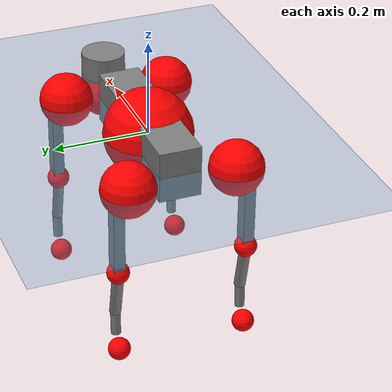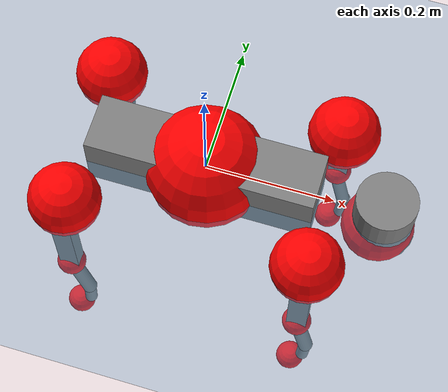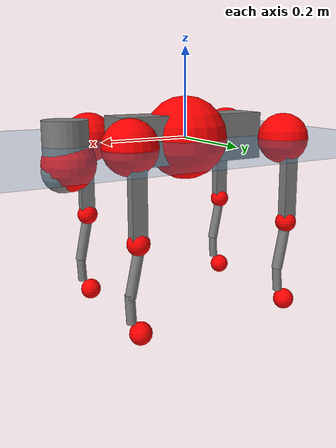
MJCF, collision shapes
<mujoco model="go2">
  <compiler angle="radian" assetdir="assets" balanceinertia="true" inertiafromgeom="false"/>

  <option timestep="0.005" density="1.2" viscosity="2e-05"/>

  <size nkey="1"/>

  <visual>
    <quality shadowsize="8192"/>
    <map shadowclip="0.5"/>
  </visual>

  <default>
    <default class="/">
      <geom contype="0" conaffinity="0" group="1" solref="-1000 -80"/>
      <site size="0.01 0.005 0.005" group="5"/>
      <general forcelimited="true" biastype="affine" gainprm="20" biasprm="0 -20 -0.5"/>
      <default class="go2">
        <joint armature="0.01" damping="0.01" frictionloss="0.2"/>
        <geom condim="1" margin="0.001"/>
        <default class="visual">
          <geom type="mesh" group="2"/>
        </default>
        <default class="collision">
          <geom group="3"/>
          <default class="foot">
            <geom size="0.022 0 0" condim="6" priority="1" friction="0.8 0.02 0.01" solimp="0.015 1 0.022"/>
          </default>
        </default>
        <default class="reward_collision_sphere">
          <geom group="5" rgba="1 0 0 1"/>
        </default>
      </default>
    </default>
  </default>

  <asset>
    <texture type="skybox" colorspace="auto" name="//unnamed_texture_0" builtin="gradient" rgb1="0.95 0.95 0.95" rgb2="0.95 0.95 0.95" width="100" height="600"/>
    <texture type="2d" colorspace="auto" name="texplane" builtin="checker" rgb1="0.345 0.575 0.748" rgb2="0.345 0.575 0.748" markrgb="1 1 1" width="512" height="512"/>
    <material name="MatPlane" class="/" texture="texplane" texuniform="true" texrepeat="2 2" specular="0.9"/>
    <material name="metal" class="/" rgba="0.9 0.95 0.95 1"/>
    <material name="black" class="/" rgba="0 0 0 1"/>
    <material name="white" class="/"/>
    <material name="gray" class="/" rgba="0.671705 0.692426 0.77427 1"/>
    <mesh name="base_0" class="/" file="base_0.obj"/>
    <mesh name="base_1" class="/" file="base_1.obj"/>
    <mesh name="base_2" class="/" file="base_2.obj"/>
    <mesh name="base_3" class="/" file="base_3.obj"/>
    <mesh name="base_4" class="/" file="base_4.obj"/>
    <mesh name="hip_0" class="/" file="hip_0.obj"/>
    <mesh name="hip_1" class="/" file="hip_1.obj"/>
    <mesh name="thigh_0" class="/" file="thigh_0.obj"/>
    <mesh name="thigh_1" class="/" file="thigh_1.obj"/>
    <mesh name="thigh_mirror_0" class="/" file="thigh_mirror_0.obj"/>
    <mesh name="thigh_mirror_1" class="/" file="thigh_mirror_1.obj"/>
    <mesh name="calf_0" class="/" file="calf_0.obj"/>
    <mesh name="calf_1" class="/" file="calf_1.obj"/>
    <mesh name="calf_mirror_0" class="/" file="calf_mirror_0.obj"/>
    <mesh name="calf_mirror_1" class="/" file="calf_mirror_1.obj"/>
    <mesh name="foot" class="/" file="foot.obj"/>
  </asset>

  <worldbody>
    <geom name="floor" class="/" size="100 100 0.125" type="plane" group="0" material="MatPlane"/>
    <light name="toplight_shadow" class="/" pos="0 0 5" dir="0.0990148 0.0990148 -0.990148" type="directional" ambient="0.04 0.04 0.04" diffuse="0.55 0.55 0.55" specular="0.12 0.12 0.12"/>
    <light name="toplight_fill" class="/" pos="0 0 5" dir="0.0990148 0.0990148 -0.990148" type="directional" castshadow="false" ambient="0.04 0.04 0.04" diffuse="0.3 0.3 0.3" specular="0.08 0.08 0.08"/>
    <body name="trunk" childclass="go2" pos="7.13272e-05 0.000316504 -7.88485e-05" quat="1 -1.3892e-05 -1.85187e-05 1.53008e-06">
      <inertial pos="0.0200468 -3.60601e-06 -0.00490932" quat="0.0024944 0.712543 -0.00843695 0.701573" mass="5.73694" diaginertia="0.0932632 0.0823283 0.0128111"/>
      <joint name="//unnamed_joint_0" type="free" armature="0" damping="0" frictionloss="0"/>
      <geom name="//unnamed_geom_1" class="visual" material="black" mesh="base_0"/>
      <geom name="//unnamed_geom_2" class="visual" material="black" mesh="base_1"/>
      <geom name="//unnamed_geom_3" class="visual" material="black" mesh="base_2"/>
      <geom name="//unnamed_geom_4" class="visual" material="white" mesh="base_3"/>
      <geom name="//unnamed_geom_5" class="visual" material="gray" mesh="base_4"/>
      <geom name="trunk_1" class="collision" size="0.176312 0.0438203 0.0534279" type="box"/>
      <geom name="trunk_2" class="collision" size="0.0468666 0.0421799" pos="0.276663 0 0.00878628" type="cylinder"/>
      <geom name="trunk_3" class="collision" size="0.0440546" pos="0.284429 0 -0.0527177"/>
      <geom name="//unnamed_geom_9" class="reward_collision_sphere" size="0.0937332"/>
      <geom name="//unnamed_geom_10" class="reward_collision_sphere" size="0.0562399" pos="0.271809 0 -0.0395383"/>
      <site name="imu" pos="-0.0270064 -0.0047186 0.0387959" size="0.00937332"/>
      <camera name="track" pos="0 -1.92524 0" quat="0.707107 0.707107 0 0" mode="trackcom"/>
      <camera name="ego_camera" pos="0.302873 0 0.0395383" quat="-0.5 -0.5 0.5 0.5"/>
      <body name="FL_hip" pos="0.186334 0.0463939 0.00233566" quat="1 -2.31839e-06 6.96029e-06 5.79081e-08">
        <inertial pos="-0.00556135 0.00207133 -0.00102252" quat="0.497164 0.498897 0.505528 0.498369" mass="0.561119" diaginertia="0.000761525 0.000498002 0.000253005"/>
        <joint name="FL_hip_joint" pos="0 0 0" axis="0.999984 0.000676571 -0.00564676" stiffness="0.00656141" range="-1.019 1.03101" armature="0.0095568" damping="0.00381805" frictionloss="0.18048"/>
        <geom name="//unnamed_geom_11" class="visual" material="metal" mesh="hip_0"/>
        <geom name="//unnamed_geom_12" class="visual" material="gray" mesh="hip_1"/>
        <geom name="//unnamed_geom_13" class="collision" size="0.0431173 0.0187466" pos="0 0.0770098 0" quat="0.707107 0.707107 0 0" type="cylinder"/>
        <geom name="//unnamed_geom_14" class="reward_collision_sphere" size="0.0562399" pos="0 0.0673835 0"/>
        <body name="FL_thigh" pos="-0.00126951 0.0930506 0.00177783" quat="1 0.000269656 -1.31658e-05 -0.000251312">
          <inertial pos="-0.00460387 -0.0221646 -0.0280765" quat="0.830077 0.085338 -0.0203139 0.550706" mass="0.948485" diaginertia="0.00510899 0.00481639 0.000458552"/>
          <joint name="FL_thigh_joint" pos="0 0 0" axis="-0.00304911 0.999991 0.00282037" stiffness="0.00487239" range="-1.58709 3.50877" armature="0.00933734" damping="0.0108118" frictionloss="0.183319"/>
          <geom name="//unnamed_geom_15" class="visual" material="metal" mesh="thigh_0"/>
          <geom name="//unnamed_geom_16" class="visual" material="gray" mesh="thigh_1"/>
          <geom name="//unnamed_geom_17" class="collision" size="0.0998259 0.0114823 0.0159346" pos="0 0 -0.0935739" quat="0.707107 0 0.707107 0" type="box"/>
          <body name="FL_calf" pos="-0.00108599 -0.00158448 -0.18671" quat="1 0.000242756 0.000188199 0.000353745">
            <inertial pos="0.00542772 -0.000548765 -0.125072" quat="0.710741 0.00132084 -0.00405486 0.703441" mass="0.198069" diaginertia="0.00129064 0.00122313 2.74648e-05"/>
            <joint name="FL_calf_joint" pos="0 0 0" axis="0.00734797 0.999972 -0.00159806" stiffness="0.00201232" range="-2.74765 -0.83382" armature="0.00981917" damping="0.000451462" frictionloss="0.186674"/>
            <geom name="//unnamed_geom_18" class="visual" material="gray" mesh="calf_0"/>
            <geom name="//unnamed_geom_19" class="visual" material="black" mesh="calf_1"/>
            <geom name="FL_calf0" class="collision" size="0.011248 0.0562399" pos="0.00776597 0 -0.0527177" quat="0.994493 0 -0.104807 0" type="cylinder"/>
            <geom name="//unnamed_geom_21" class="collision" size="0.0103107 0.0304633" pos="0.0194149 0 -0.130037" quat="0.999688 0 0.0249974 0" type="cylinder"/>
            <geom name="//unnamed_geom_22" class="visual" pos="0 0 -0.187148" quat="1 0 0 0" material="black" mesh="foot"/>
            <geom name="FL_foot" class="foot" size="0.0184287" pos="-0.00194149 0 -0.187148"/>
            <geom name="//unnamed_geom_24" class="reward_collision_sphere" size="0.0234333"/>
            <geom name="//unnamed_geom_25" class="reward_collision_sphere" size="0.0234333" pos="-0.00194149 0 -0.187148"/>
            <site name="FL_foot" class="foot" pos="-0.00194149 0 -0.187148" size="0.00937332"/>
          </body>
        </body>
      </body>
      <body name="FR_hip" pos="0.188654 -0.0434126 -0.000356977" quat="1 -4.98127e-05 0.000163597 -0.000105354">
        <inertial pos="-0.0050192 -0.00126097 -0.000427462" quat="0.497505 0.504758 0.500384 0.497316" mass="0.555279" diaginertia="0.000761279 0.000482697 0.000250311"/>
        <joint name="FR_hip_joint" pos="0 0 0" axis="0.999985 -0.00495767 -0.00215335" stiffness="0.0065879" range="-1.04912 1.05538" armature="0.00935429" damping="0.0174021" frictionloss="0.184224"/>
        <geom name="//unnamed_geom_26" class="visual" pos="0 7.31718e-10 3.13849e-08" quat="4.63268e-05 1 0 0" material="metal" mesh="hip_0"/>
        <geom name="//unnamed_geom_27" class="visual" pos="0 1.1862e-09 -7.76269e-08" quat="4.63268e-05 1 0 0" material="gray" mesh="hip_1"/>
        <geom name="//unnamed_geom_28" class="collision" size="0.0431173 0.0187466" pos="0 -0.0770098 0" quat="0.707107 0.707107 0 0" type="cylinder"/>
        <geom name="//unnamed_geom_29" class="reward_collision_sphere" size="0.0562399" pos="0 -0.0673835 0"/>
        <body name="FR_thigh" pos="0.00164835 -0.0906027 0.00110466" quat="1 -0.000227944 -0.000140447 0.000382496">
          <inertial pos="-0.00345992 0.0203723 -0.0283652" quat="0.548959 -0.0170054 0.0839458 0.831449" mass="0.941501" diaginertia="0.00511815 0.0048295 0.000463271"/>
          <joint name="FR_thigh_joint" pos="0 0 0" axis="0.000231447 -1 -0.000347433" range="-3.5106 1.57059" armature="0.00940768" damping="0.0149863" frictionloss="0.187805"/>
          <geom name="//unnamed_geom_30" class="visual" material="metal" mesh="thigh_mirror_0"/>
          <geom name="//unnamed_geom_31" class="visual" material="gray" mesh="thigh_mirror_1"/>
          <geom name="//unnamed_geom_32" class="collision" size="0.0998259 0.0114823 0.0159346" pos="0 0 -0.0935739" quat="0.707107 0 0.707107 0" type="box"/>
          <body name="FR_calf" pos="-0.000726289 1.76585e-05 -0.186193" quat="1 -7.60128e-06 -2.94443e-06 0.000126365">
            <inertial pos="0.00530559 0.000681094 -0.125307" quat="0.704682 -0.00776169 0.00407975 0.709469" mass="0.198612" diaginertia="0.00129223 0.00120864 2.77992e-05"/>
            <joint name="FR_calf_joint" pos="0 0 0" axis="0.00506848 -0.999975 -0.00488399" stiffness="0.00163997" range="0.845875 2.7138" armature="0.00972407" damping="0.0144122" frictionloss="0.18604"/>
            <geom name="//unnamed_geom_33" class="visual" material="gray" mesh="calf_mirror_0"/>
            <geom name="//unnamed_geom_34" class="visual" material="black" mesh="calf_mirror_1"/>
            <geom name="FR_calf0" class="collision" size="0.0121853 0.0562399" pos="0.00970746 0 -0.0527177" quat="0.995004 0 -0.0998334 0" type="cylinder"/>
            <geom name="//unnamed_geom_36" class="collision" size="0.0103107 0.0304633" pos="0.0194149 0 -0.130037" quat="0.999688 0 0.0249974 0" type="cylinder"/>
            <geom name="//unnamed_geom_37" class="visual" pos="0 0 -0.187148" quat="1 0 0 0" material="black" mesh="foot"/>
            <geom name="FR_foot" class="foot" size="0.0222513" pos="-0.00194149 0 -0.187148"/>
            <geom name="//unnamed_geom_39" class="reward_collision_sphere" size="0.0234333"/>
            <geom name="//unnamed_geom_40" class="reward_collision_sphere" size="0.0234333" pos="-0.00194149 0 -0.187148"/>
            <site name="FR_foot" class="foot" pos="-0.00194149 0 -0.187148" size="0.00937332"/>
          </body>
        </body>
      </body>
      <body name="RL_hip" pos="-0.188204 0.0443633 -0.000942646" quat="1 9.8876e-05 0.000145312 -2.95665e-05">
        <inertial pos="0.00503827 0.00235481 -0.000820003" quat="0.505332 0.498398 0.4969 0.499328" mass="0.553759" diaginertia="0.000754228 0.000488152 0.00024895"/>
        <joint name="RL_hip_joint" pos="0 0 0" axis="-0.999855 0.011555 -0.0124996" stiffness="0.00268734" range="-1.04157 1.06245" armature="0.0093413" damping="0.0130334" frictionloss="0.19217"/>
        <geom name="//unnamed_geom_41" class="visual" pos="-8.02488e-10 0 -1.57306e-07" quat="4.63268e-05 0 1 0" material="metal" mesh="hip_0"/>
        <geom name="//unnamed_geom_42" class="visual" pos="-1.30093e-09 0 -1.39508e-07" quat="4.63268e-05 0 1 0" material="gray" mesh="hip_1"/>
        <geom name="//unnamed_geom_43" class="collision" size="0.0431173 0.0187466" pos="0 0.0770098 0" quat="0.707107 0.707107 0 0" type="cylinder"/>
        <geom name="//unnamed_geom_44" class="reward_collision_sphere" size="0.0562399" pos="0 0.0673835 0"/>
        <body name="RL_thigh" pos="0.00062326 0.0914712 -0.00116068" quat="1 9.57111e-05 -0.000247158 -1.15661e-05">
          <inertial pos="-0.00371572 -0.0213358 -0.0295365" quat="0.827798 0.0885896 -0.0206185 0.553604" mass="0.959816" diaginertia="0.00508508 0.0047595 0.000457933"/>
          <joint name="RL_thigh_joint" pos="0 0 0" axis="-0.00039747 0.999986 -0.00528393" range="-0.515753 4.52033" armature="0.00959386" damping="0.00813876" frictionloss="0.188235"/>
          <geom name="//unnamed_geom_45" class="visual" material="metal" mesh="thigh_0"/>
          <geom name="//unnamed_geom_46" class="visual" material="gray" mesh="thigh_1"/>
          <geom name="//unnamed_geom_47" class="collision" size="0.0998259 0.0114823 0.0159346" pos="0 0 -0.0935739" quat="0.707107 0 0.707107 0" type="box"/>
          <body name="RL_calf" pos="0.000699559 -0.00198928 -0.187562" quat="1 -6.67006e-05 -3.43469e-05 -5.08423e-05">
            <inertial pos="0.00625311 -0.000404285 -0.124547" quat="0.709661 0.00203559 -0.00399883 0.704529" mass="0.194295" diaginertia="0.00127429 0.00120072 2.75461e-05"/>
            <joint name="RL_calf_joint" pos="0 0 0" axis="-0.00612551 0.999965 0.00573108" range="-2.69845 -0.828608" armature="0.00929219" damping="0.002607" frictionloss="0.185863"/>
            <geom name="//unnamed_geom_48" class="visual" material="gray" mesh="calf_0"/>
            <geom name="//unnamed_geom_49" class="visual" material="black" mesh="calf_1"/>
            <geom name="RL_calf0" class="collision" size="0.0121853 0.0562399" pos="0.00970746 0 -0.0527177" quat="0.995004 0 -0.0998334 0" type="cylinder"/>
            <geom name="//unnamed_geom_51" class="collision" size="0.0103107 0.0304633" pos="0.0194149 0 -0.130037" quat="0.999688 0 0.0249974 0" type="cylinder"/>
            <geom name="//unnamed_geom_52" class="visual" pos="0 0 -0.187148" quat="1 0 0 0" material="black" mesh="foot"/>
            <geom name="RL_foot" class="foot" size="0.0174158" pos="-0.00194149 0 -0.187148"/>
            <geom name="//unnamed_geom_54" class="reward_collision_sphere" size="0.0234333"/>
            <geom name="//unnamed_geom_55" class="reward_collision_sphere" size="0.0234333" pos="-0.00194149 0 -0.187148"/>
            <site name="RL_foot" class="foot" pos="-0.00194149 0 -0.187148" size="0.00937332"/>
          </body>
        </body>
      </body>
      <body name="RR_hip" pos="-0.186938 -0.0456064 -0.0004023" quat="1 -3.15222e-05 -3.54675e-05 5.97967e-05">
        <inertial pos="0.00557748 -0.00174803 0.000882805" quat="0.498545 0.498369 0.497685 0.505362" mass="0.549729" diaginertia="0.000749131 0.000483991 0.000250523"/>
        <joint name="RR_hip_joint" pos="0 0 0" axis="-0.999993 0.0034854 0.00120174" range="-1.0517 1.03627" armature="0.00941714" damping="0.00689126" frictionloss="0.188198"/>
        <geom name="//unnamed_geom_56" class="visual" pos="8.02207e-10 7.31718e-10 -1.88691e-07" quat="2.14617e-09 4.63268e-05 4.63268e-05 -1" material="metal" mesh="hip_0"/>
        <geom name="//unnamed_geom_57" class="visual" pos="1.30163e-09 1.1862e-09 -6.18813e-08" quat="2.14617e-09 4.63268e-05 4.63268e-05 -1" material="gray" mesh="hip_1"/>
        <geom name="//unnamed_geom_58" class="collision" size="0.0431173 0.0187466" pos="0 -0.0770098 0" quat="0.707107 0.707107 0 0" type="cylinder"/>
        <geom name="//unnamed_geom_59" class="reward_collision_sphere" size="0.0562399" pos="0 -0.0673835 0"/>
        <body name="RR_thigh" pos="0.000518705 -0.0926951 -0.00145332" quat="1 6.24714e-05 -7.84438e-05 -2.6068e-05">
          <inertial pos="-0.00348756 0.0210022 -0.0296736" quat="0.553411 -0.0193327 0.0847905 0.828356" mass="0.955852" diaginertia="0.00517948 0.00487354 0.000465642"/>
          <joint name="RR_thigh_joint" pos="0 0 0" axis="-0.00278677 -0.999991 0.00333695" stiffness="0.00273816" range="-4.53036 0.505305" armature="0.00954498" damping="0.0126836" frictionloss="0.192284"/>
          <geom name="//unnamed_geom_60" class="visual" material="metal" mesh="thigh_mirror_0"/>
          <geom name="//unnamed_geom_61" class="visual" material="gray" mesh="thigh_mirror_1"/>
          <geom name="//unnamed_geom_62" class="collision" size="0.0998259 0.0114823 0.0159346" pos="0 0 -0.0935739" quat="0.707107 0 0.707107 0" type="box"/>
          <body name="RR_calf" pos="-0.00120173 -0.00053119 -0.188196" quat="1 0.000247582 0.000210232 0.000402952">
            <inertial pos="0.00744125 0.000655126 -0.12482" quat="0.702285 -0.00396294 0.00337794 0.711877" mass="0.200009" diaginertia="0.00129777 0.00121251 2.8071e-05"/>
            <joint name="RR_calf_joint" pos="0 0 0" axis="0.00478727 -0.999987 -0.0016878" stiffness="0.000446222" range="0.842735 2.74116" armature="0.00911362" damping="0.00864284" frictionloss="0.189285"/>
            <geom name="//unnamed_geom_63" class="visual" material="gray" mesh="calf_mirror_0"/>
            <geom name="//unnamed_geom_64" class="visual" material="black" mesh="calf_mirror_1"/>
            <geom name="RR_calf0" class="collision" size="0.0121853 0.0562399" pos="0.00970746 0 -0.0527177" quat="0.995004 0 -0.0998334 0" type="cylinder"/>
            <geom name="//unnamed_geom_66" class="collision" size="0.0103107 0.0304633" pos="0.0194149 0 -0.130037" quat="0.999688 0 0.0249974 0" type="cylinder"/>
            <geom name="//unnamed_geom_67" class="visual" pos="0 0 -0.187148" quat="1 0 0 0" material="black" mesh="foot"/>
            <geom name="RR_foot" class="foot" size="0.0212517" pos="-0.00194149 0 -0.187148"/>
            <geom name="//unnamed_geom_69" class="reward_collision_sphere" size="0.0234333"/>
            <geom name="//unnamed_geom_70" class="reward_collision_sphere" size="0.0234333" pos="-0.00194149 0 -0.187148"/>
            <site name="RR_foot" class="foot" pos="-0.00194149 0 -0.187148" size="0.00937332"/>
          </body>
        </body>
      </body>
    </body>
  </worldbody>

  <contact>
    <pair class="/" geom1="floor" geom2="FL_foot" name="//unnamed_contact_0"/>
    <pair class="/" geom1="floor" geom2="FR_foot" name="//unnamed_contact_1"/>
    <pair class="/" geom1="floor" geom2="RL_foot" name="//unnamed_contact_2"/>
    <pair class="/" geom1="floor" geom2="RR_foot" name="//unnamed_contact_3"/>
  </contact>

  <actuator>
    <general name="FL_hip" class="/" joint="FL_hip_joint" forcerange="-23.3342 23.3342" gainprm="19.2352" biasprm="0 -19.2352 -0.467624"/>
    <general name="FL_thigh" class="/" joint="FL_thigh_joint" forcerange="-22.9633 22.9633" gainprm="19.2352" biasprm="0 -19.2352 -0.467624"/>
    <general name="FL_calf" class="/" joint="FL_calf_joint" forcerange="-42.2552 42.2552" gainprm="19.2352" biasprm="0 -19.2352 -0.467624"/>
    <general name="FR_hip" class="/" joint="FR_hip_joint" forcerange="-22.8545 22.8545" gainprm="19.2352" biasprm="0 -19.2352 -0.467624"/>
    <general name="FR_thigh" class="/" joint="FR_thigh_joint" forcerange="-22.8846 22.8846" gainprm="19.2352" biasprm="0 -19.2352 -0.467624"/>
    <general name="FR_calf" class="/" joint="FR_calf_joint" forcerange="-41.2834 41.2834" gainprm="19.2352" biasprm="0 -19.2352 -0.467624"/>
    <general name="RL_hip" class="/" joint="RL_hip_joint" forcerange="-21.9182 21.9182" gainprm="19.2352" biasprm="0 -19.2352 -0.467624"/>
    <general name="RL_thigh" class="/" joint="RL_thigh_joint" forcerange="-22.6205 22.6205" gainprm="19.2352" biasprm="0 -19.2352 -0.467624"/>
    <general name="RL_calf" class="/" joint="RL_calf_joint" forcerange="-44.0685 44.0685" gainprm="19.2352" biasprm="0 -19.2352 -0.467624"/>
    <general name="RR_hip" class="/" joint="RR_hip_joint" forcerange="-21.2785 21.2785" gainprm="19.2352" biasprm="0 -19.2352 -0.467624"/>
    <general name="RR_thigh" class="/" joint="RR_thigh_joint" forcerange="-21.9393 21.9393" gainprm="19.2352" biasprm="0 -19.2352 -0.467624"/>
    <general name="RR_calf" class="/" joint="RR_calf_joint" forcerange="-42.7962 42.7962" gainprm="19.2352" biasprm="0 -19.2352 -0.467624"/>
  </actuator>

  <sensor>
    <gyro site="imu" name="imu_angular_velocity"/>
    <velocimeter site="imu" name="imu_linear_velocity"/>
    <framelinvel objtype="site" objname="FL_foot" name="FL_foot_global_linear_velocity"/>
    <framelinvel objtype="site" objname="FR_foot" name="FR_foot_global_linear_velocity"/>
    <framelinvel objtype="site" objname="RL_foot" name="RL_foot_global_linear_velocity"/>
    <framelinvel objtype="site" objname="RR_foot" name="RR_foot_global_linear_velocity"/>
  </sensor>

  <keyframe>
    <key name="home" qpos="0 0 0.325 1 0 0 0 0.1 0.8 -1.5 -0.1 -0.8 1.5 -0.1 0.8 -1.5 0.1 -0.8 1.5"/>
  </keyframe>
</mujoco>
